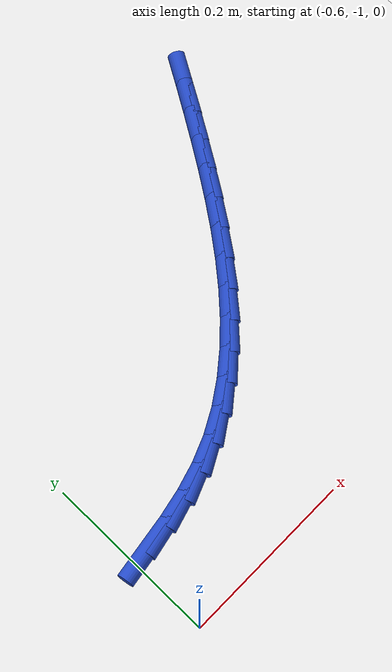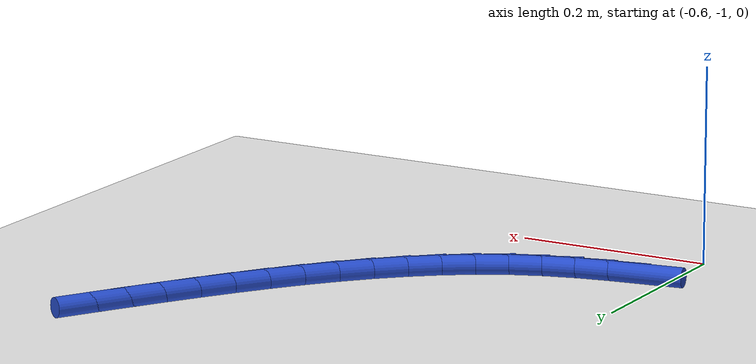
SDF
<sdf version="1.6">
 <world name="default">
  <model name="ground_plane">
   <static>1</static>
   <link name="link">
    <collision name="collision">
     <geometry><plane><normal>0 0 1</normal><size>100 100</size></plane></geometry>
     <surface><friction><ode><mu>100</mu><mu2>50</mu2></ode></friction></surface>
    </collision>
    <visual name="visual">
     <cast_shadows>0</cast_shadows>
     <geometry><plane><normal>0 0 1</normal><size>100 100</size></plane></geometry>
     <material>
      <script><uri>file://media/materials/scripts/gazebo.material</uri><name>Gazebo/WhiteGlow</name></script>
     </material>
    </visual>
   </link>
  </model>
  <model name="line">
   <link name="link_167">
    <pose>-0.5804606413027792 -0.9072184716223783 0.01 0 1.57 0.15922806911013568</pose>
    <collision name="collision">
     <geometry><cylinder><radius>0.01</radius><length>0.08</length></cylinder></geometry>
    </collision>
    <visual name="visual">
     <material>
      <script><name>Gazebo/Blue</name><uri>file://media/materials/scripts/gazebo.material</uri></script>
     </material>
     <geometry><cylinder><radius>0.01</radius><length>0.08</length></cylinder></geometry>
    </visual>
   </link>
   <link name="link_168">
    <pose>-0.5464367365568025 -0.9017546569788876 0.01 0 1.57 0.21238591010119878</pose>
    <collision name="collision">
     <geometry><cylinder><radius>0.01</radius><length>0.08</length></cylinder></geometry>
    </collision>
    <visual name="visual">
     <material>
      <script><name>Gazebo/Blue</name><uri>file://media/materials/scripts/gazebo.material</uri></script>
     </material>
     <geometry><cylinder><radius>0.01</radius><length>0.08</length></cylinder></geometry>
    </visual>
   </link>
   <link name="link_169">
    <pose>-0.5132986874781824 -0.8946088337054886 0.01 0 1.57 0.28992340716183673</pose>
    <collision name="collision">
     <geometry><cylinder><radius>0.01</radius><length>0.08</length></cylinder></geometry>
    </collision>
    <visual name="visual">
     <material>
      <script><name>Gazebo/Blue</name><uri>file://media/materials/scripts/gazebo.material</uri></script>
     </material>
     <geometry><cylinder><radius>0.01</radius><length>0.08</length></cylinder></geometry>
    </visual>
   </link>
   <link name="link_170">
    <pose>-0.48130121076218285 -0.885063046474245 0.01 0 1.57 0.3915421443007699</pose>
    <collision name="collision">
     <geometry><cylinder><radius>0.01</radius><length>0.08</length></cylinder></geometry>
    </collision>
    <visual name="visual">
     <material>
      <script><name>Gazebo/Blue</name><uri>file://media/materials/scripts/gazebo.material</uri></script>
     </material>
     <geometry><cylinder><radius>0.01</radius><length>0.08</length></cylinder></geometry>
    </visual>
   </link>
   <link name="link_171">
    <pose>-0.4506905068951727 -0.872425148788054 0.01 0 1.57 0.4994656890164213</pose>
    <collision name="collision">
     <geometry><cylinder><radius>0.01</radius><length>0.08</length></cylinder></geometry>
    </collision>
    <visual name="visual">
     <material>
      <script><name>Gazebo/Blue</name><uri>file://media/materials/scripts/gazebo.material</uri></script>
     </material>
     <geometry><cylinder><radius>0.01</radius><length>0.08</length></cylinder></geometry>
    </visual>
   </link>
   <link name="link_172">
    <pose>-0.4215417420870605 -0.8565213227586191 0.01 0 1.57 0.5966925863920911</pose>
    <collision name="collision">
     <geometry><cylinder><radius>0.01</radius><length>0.08</length></cylinder></geometry>
    </collision>
    <visual name="visual">
     <material>
      <script><name>Gazebo/Blue</name><uri>file://media/materials/scripts/gazebo.material</uri></script>
     </material>
     <geometry><cylinder><radius>0.01</radius><length>0.08</length></cylinder></geometry>
    </visual>
   </link>
   <link name="link_173">
    <pose>-0.39377180542091905 -0.8376574178757562 0.01 0 1.57 0.6819735767147429</pose>
    <collision name="collision">
     <geometry><cylinder><radius>0.01</radius><length>0.08</length></cylinder></geometry>
    </collision>
    <visual name="visual">
     <material>
      <script><name>Gazebo/Blue</name><uri>file://media/materials/scripts/gazebo.material</uri></script>
     </material>
     <geometry><cylinder><radius>0.01</radius><length>0.08</length></cylinder></geometry>
    </visual>
   </link>
   <link name="link_174">
    <pose>-0.36729162600780124 -0.8161573456462615 0.01 0 1.57 0.7555209177489816</pose>
    <collision name="collision">
     <geometry><cylinder><radius>0.01</radius><length>0.08</length></cylinder></geometry>
    </collision>
    <visual name="visual">
     <material>
      <script><name>Gazebo/Blue</name><uri>file://media/materials/scripts/gazebo.material</uri></script>
     </material>
     <geometry><cylinder><radius>0.01</radius><length>0.08</length></cylinder></geometry>
    </visual>
   </link>
   <link name="link_175">
    <pose>-0.34201213295876004 -0.7923450175769317 0.01 0 1.57 0.8180629908168974</pose>
    <collision name="collision">
     <geometry><cylinder><radius>0.01</radius><length>0.08</length></cylinder></geometry>
    </collision>
    <visual name="visual">
     <material>
      <script><name>Gazebo/Blue</name><uri>file://media/materials/scripts/gazebo.material</uri></script>
     </material>
     <geometry><cylinder><radius>0.01</radius><length>0.08</length></cylinder></geometry>
    </visual>
   </link>
   <link name="link_176">
    <pose>-0.31784425538484845 -0.7665443451745634 0.01 0 1.57 0.8705451779983162</pose>
    <collision name="collision">
     <geometry><cylinder><radius>0.01</radius><length>0.08</length></cylinder></geometry>
    </collision>
    <visual name="visual">
     <material>
      <script><name>Gazebo/Blue</name><uri>file://media/materials/scripts/gazebo.material</uri></script>
     </material>
     <geometry><cylinder><radius>0.01</radius><length>0.08</length></cylinder></geometry>
    </visual>
   </link>
   <link name="link_177">
    <pose>-0.29469892239711937 -0.7390792399459527 0.01 0 1.57 0.9139308805022084</pose>
    <collision name="collision">
     <geometry><cylinder><radius>0.01</radius><length>0.08</length></cylinder></geometry>
    </collision>
    <visual name="visual">
     <material>
      <script><name>Gazebo/Blue</name><uri>file://media/materials/scripts/gazebo.material</uri></script>
     </material>
     <geometry><cylinder><radius>0.01</radius><length>0.08</length></cylinder></geometry>
    </visual>
   </link>
   <link name="link_178">
    <pose>-0.27248706310662585 -0.7102736133978966 0.01 0 1.57 0.949086056396342</pose>
    <collision name="collision">
     <geometry><cylinder><radius>0.01</radius><length>0.08</length></cylinder></geometry>
    </collision>
    <visual name="visual">
     <material>
      <script><name>Gazebo/Blue</name><uri>file://media/materials/scripts/gazebo.material</uri></script>
     </material>
     <geometry><cylinder><radius>0.01</radius><length>0.08</length></cylinder></geometry>
    </visual>
   </link>
   <link name="link_179">
    <pose>-0.25111960662442095 -0.6804513770371916 0.01 0 1.57 0.9767193074338675</pose>
    <collision name="collision">
     <geometry><cylinder><radius>0.01</radius><length>0.08</length></cylinder></geometry>
    </collision>
    <visual name="visual">
     <material>
      <script><name>Gazebo/Blue</name><uri>file://media/materials/scripts/gazebo.material</uri></script>
     </material>
     <geometry><cylinder><radius>0.01</radius><length>0.08</length></cylinder></geometry>
    </visual>
   </link>
   <link name="link_180">
    <pose>-0.2305074820615574 -0.649936442370634 0.01 0 1.57 0.9973529044590401</pose>
    <collision name="collision">
     <geometry><cylinder><radius>0.01</radius><length>0.08</length></cylinder></geometry>
    </collision>
    <visual name="visual">
     <material>
      <script><name>Gazebo/Blue</name><uri>file://media/materials/scripts/gazebo.material</uri></script>
     </material>
     <geometry><cylinder><radius>0.01</radius><length>0.08</length></cylinder></geometry>
    </visual>
   </link>
   <link name="link_181">
    <pose>-0.21056161852908836 -0.6190527209050203 0.01 0 1.57 1.011307008394449</pose>
    <collision name="collision">
     <geometry><cylinder><radius>0.01</radius><length>0.08</length></cylinder></geometry>
    </collision>
    <visual name="visual">
     <material>
      <script><name>Gazebo/Blue</name><uri>file://media/materials/scripts/gazebo.material</uri></script>
     </material>
     <geometry><cylinder><radius>0.01</radius><length>0.08</length></cylinder></geometry>
    </visual>
   </link>
   <link name="link_182">
    <pose>-0.1911929451380666 -0.588124124147147 0.01 0 1.57 1.0203489700910584</pose>
    <collision name="collision">
     <geometry><cylinder><radius>0.01</radius><length>0.08</length></cylinder></geometry>
    </collision>
    <visual name="visual">
     <material>
      <script><name>Gazebo/Blue</name><uri>file://media/materials/scripts/gazebo.material</uri></script>
     </material>
     <geometry><cylinder><radius>0.01</radius><length>0.08</length></cylinder></geometry>
    </visual>
   </link>
   <link name="link_183">
    <pose>-0.17234016650164266 -0.5574053093649296 0.01 0 1.57 1.0313657797330738</pose>
    <collision name="collision">
     <geometry><cylinder><radius>0.01</radius><length>0.08</length></cylinder></geometry>
    </collision>
    <visual name="visual">
     <material>
      <script><name>Gazebo/Blue</name><uri>file://media/materials/scripts/gazebo.material</uri></script>
     </material>
     <geometry><cylinder><radius>0.01</radius><length>0.08</length></cylinder></geometry>
    </visual>
   </link>
  </model>
 </world>
</sdf>
